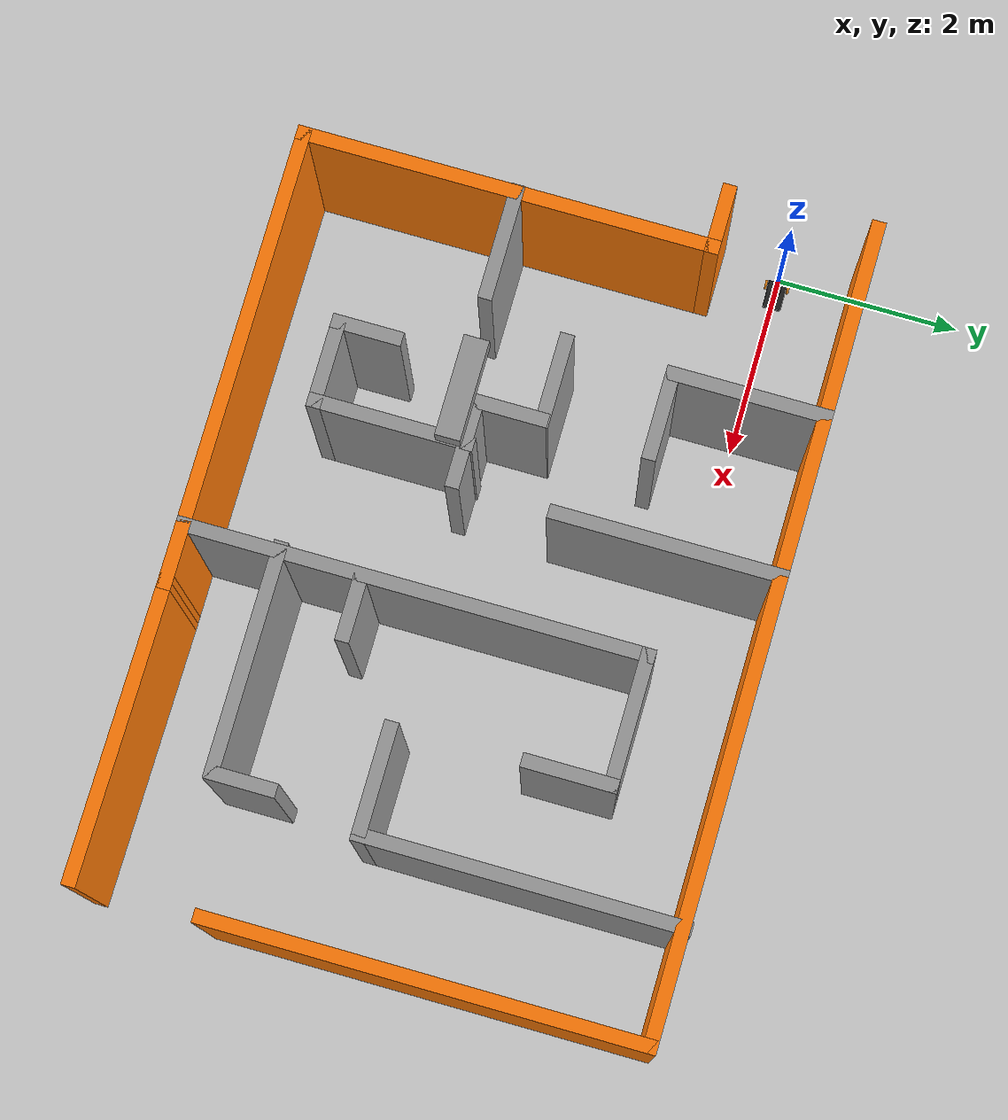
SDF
<sdf version="1.7">
 <world name="default">
  <light name="sun" type="directional">
   <pose>0 0 10 0 -0 0</pose>
   <diffuse>0.8 0.8 0.8 1</diffuse>
   <specular>0.2 0.2 0.2 1</specular>
   <attenuation>
    <range>1000</range>
    <constant>0.9</constant>
    <linear>0.01</linear>
    <quadratic>0.001</quadratic>
   </attenuation>
   <direction>-0.5 0.1 -0.9</direction>
   <spot><inner_angle>0</inner_angle><outer_angle>0</outer_angle><falloff>0</falloff></spot>
  </light>
  <model name="ground_plane">
   <static>1</static>
   <link name="link">
    <collision name="collision">
     <geometry><plane><normal>0 0 1</normal><size>100 100</size></plane></geometry>
     <surface><friction><ode><mu>100</mu><mu2>50</mu2></ode></friction></surface>
    </collision>
    <visual name="visual">
     <cast_shadows>0</cast_shadows>
     <geometry><plane><normal>0 0 1</normal><size>100 100</size></plane></geometry>
     <material>
      <script><uri>file://media/materials/scripts/gazebo.material</uri><name>Gazebo/Grey</name></script>
     </material>
    </visual>
   </link>
  </model>
  <gravity>0 0 -9.8</gravity>
  <magnetic_field>6e-06 2.3e-05 -4.2e-05</magnetic_field>
  <atmosphere type="adiabatic"/>
  <physics type="ode">
   <max_step_size>0.001</max_step_size>
   <real_time_factor>1</real_time_factor>
   <real_time_update_rate>1000</real_time_update_rate>
  </physics>
  <scene><ambient>0.4 0.4 0.4 1</ambient><background>0.7 0.7 0.7 1</background><shadows>1</shadows></scene>
  <spherical_coordinates>
   <surface_model>EARTH_WGS84</surface_model>
   <latitude_deg>0</latitude_deg>
   <longitude_deg>0</longitude_deg>
   <elevation>0</elevation>
   <heading_deg>0</heading_deg>
  </spherical_coordinates>
  <model name="maze_bot">
   <link name="base_link">
    <inertial>
     <pose>-0.013238 0 0.07715 0 -0 0</pose>
     <mass>5.37927</mass>
     <inertia>
      <ixx>0.0217221</ixx>
      <ixy>-9.70605e-17</ixy>
      <ixz>0.00671891</ixz>
      <iyy>0.0415235</iyy>
      <iyz>1.79306e-17</iyz>
      <izz>0.0432734</izz>
     </inertia>
    </inertial>
    <collision name="base_link_collision">
     <geometry>
      <mesh><scale>0.001 0.001 0.001</scale><uri>model://maze_bot/meshes/base_link.stl</uri></mesh>
     </geometry>
     <surface><friction><ode><mu>0.2</mu><mu2>0.2</mu2></ode></friction></surface>
    </collision>
    <collision name="base_link_fixed_joint_lump__caster_1_collision_1">
     <geometry>
      <mesh><scale>0.001 0.001 0.001</scale><uri>model://maze_bot/meshes/caster_1.stl</uri></mesh>
     </geometry>
     <surface><friction><ode><mu>0.01</mu><mu2>0.01</mu2></ode></friction></surface>
    </collision>
    <collision name="base_link_fixed_joint_lump__lidar_1_collision_2">
     <geometry>
      <mesh><scale>0.001 0.001 0.001</scale><uri>model://maze_bot/meshes/lidar_1.stl</uri></mesh>
     </geometry>
     <surface><friction><ode><mu>0.2</mu><mu2>0.2</mu2></ode></friction></surface>
    </collision>
    <collision name="base_link_fixed_joint_lump__camera_1_collision_3">
     <geometry>
      <mesh><scale>0.001 0.001 0.001</scale><uri>model://maze_bot/meshes/camera_1.stl</uri></mesh>
     </geometry>
     <surface><friction><ode><mu>0.2</mu><mu2>0.2</mu2></ode></friction></surface>
    </collision>
    <visual name="base_link_visual">
     <geometry>
      <mesh><scale>0.001 0.001 0.001</scale><uri>model://maze_bot/meshes/base_link.stl</uri></mesh>
     </geometry>
     <material>
      <script><name>Gazebo/Black</name><uri>file://media/materials/scripts/gazebo.material</uri></script>
     </material>
    </visual>
    <visual name="base_link_fixed_joint_lump__caster_1_visual_1">
     <geometry>
      <mesh><scale>0.001 0.001 0.001</scale><uri>model://maze_bot/meshes/caster_1.stl</uri></mesh>
     </geometry>
     <material>
      <script><name>Gazebo/White</name><uri>file://media/materials/scripts/gazebo.material</uri></script>
     </material>
    </visual>
    <visual name="base_link_fixed_joint_lump__lidar_1_visual_2">
     <geometry>
      <mesh><scale>0.001 0.001 0.001</scale><uri>model://maze_bot/meshes/lidar_1.stl</uri></mesh>
     </geometry>
     <material>
      <script><name>Gazebo/DarkGrey</name><uri>file://media/materials/scripts/gazebo.material</uri></script>
     </material>
    </visual>
    <visual name="base_link_fixed_joint_lump__camera_1_visual_3">
     <geometry>
      <mesh><scale>0.001 0.001 0.001</scale><uri>model://maze_bot/meshes/camera_1.stl</uri></mesh>
     </geometry>
     <material>
      <script><name>Gazebo/Blue</name><uri>file://media/materials/scripts/gazebo.material</uri></script>
     </material>
    </visual>
    <sensor name="gazebo_lidar" type="ray">
     <visualize>0</visualize>
     <update_rate>12</update_rate>
     <plugin name="gazebo_lidar" filename="libgazebo_ros_ray_sensor.so">
      <ros><remapping>~/out:=scan</remapping></ros>
      <output_type>sensor_msgs/LaserScan</output_type>
      <frame_name>lidar_1</frame_name>
     </plugin>
     <ray>
      <scan>
       <horizontal>
        <samples>360</samples>
        <resolution>1</resolution>
        <min_angle>-3.14</min_angle>
        <max_angle>3.14</max_angle>
       </horizontal>
       <vertical><samples>1</samples><min_angle>0</min_angle><max_angle>0</max_angle></vertical>
      </scan>
      <range><min>0.12</min><max>3.5</max><resolution>0.015</resolution></range>
      <noise><type>gaussian</type><mean>0</mean><stddev>0.01</stddev></noise>
     </ray>
     <pose>-0.05 0 0.125 0 -0 0</pose>
    </sensor>
    <self_collide>1</self_collide>
    <sensor name="camera1" type="camera">
     <update_rate>30</update_rate>
     <camera name="head">
      <horizontal_fov>1.39626</horizontal_fov>
      <image><width>800</width><height>800</height><format>R8G8B8</format></image>
      <clip><near>0.02</near><far>300</far></clip>
      <noise><type>gaussian</type><mean>0</mean><stddev>0.007</stddev></noise>
     </camera>
     <plugin name="camera_controller" filename="libgazebo_ros_camera.so">
      <alwaysOn>1</alwaysOn>
      <updateRate>0.0</updateRate>
      <cameraName>/camera</cameraName>
      <imageTopicName>image_raw</imageTopicName>
      <cameraInfoTopicName>camera_info</cameraInfoTopicName>
      <frameName>camera_1</frameName>
      <hackBaseline>0.07</hackBaseline>
     </plugin>
     <pose>0.16 0 0.05 0 -0 0</pose>
    </sensor>
   </link>
   <joint name="Revolute 1" type="revolute">
    <pose relative_to="base_link">-0.1 -0.11 0.05 0 -0 0</pose>
    <parent>base_link</parent>
    <child>right_wheel_1</child>
    <axis>
     <xyz>0 1 0</xyz>
     <limit><lower>-1e+16</lower><upper>1e+16</upper></limit>
     <dynamics><spring_reference>0</spring_reference><spring_stiffness>0</spring_stiffness></dynamics>
    </axis>
   </joint>
   <link name="right_wheel_1">
    <pose relative_to="Revolute 1">0 0 0 0 -0 0</pose>
    <inertial>
     <pose>-0 -0.0125 0 0 -0 0</pose>
     <mass>0.175431</mass>
     <inertia>
      <ixx>0.000119</ixx>
      <ixy>0</ixy>
      <ixz>0</ixz>
      <iyy>0.000221</iyy>
      <iyz>0</iyz>
      <izz>0.000119</izz>
     </inertia>
    </inertial>
    <collision name="right_wheel_1_collision">
     <pose>0.1 0.11 -0.05 0 -0 0</pose>
     <geometry>
      <mesh><scale>0.001 0.001 0.001</scale><uri>model://maze_bot/meshes/right_wheel_1.stl</uri></mesh>
     </geometry>
     <surface><friction><ode><mu>15000</mu><mu2>15000</mu2></ode></friction></surface>
    </collision>
    <visual name="right_wheel_1_visual">
     <pose>0.1 0.11 -0.05 0 -0 0</pose>
     <geometry>
      <mesh><scale>0.001 0.001 0.001</scale><uri>model://maze_bot/meshes/right_wheel_1.stl</uri></mesh>
     </geometry>
     <material>
      <script><name>Gazebo/Orange</name><uri>file://media/materials/scripts/gazebo.material</uri></script>
     </material>
    </visual>
    <self_collide>1</self_collide>
   </link>
   <joint name="Revolute 2" type="revolute">
    <pose relative_to="base_link">-0.1 0.11 0.05 0 -0 0</pose>
    <parent>base_link</parent>
    <child>left_wheel_1</child>
    <axis>
     <xyz>0 1 0</xyz>
     <limit><lower>-1e+16</lower><upper>1e+16</upper></limit>
     <dynamics><spring_reference>0</spring_reference><spring_stiffness>0</spring_stiffness></dynamics>
    </axis>
   </joint>
   <link name="left_wheel_1">
    <pose relative_to="Revolute 2">0 0 0 0 -0 0</pose>
    <inertial>
     <pose>-0 0.0125 0 0 -0 0</pose>
     <mass>0.175431</mass>
     <inertia>
      <ixx>0.000119</ixx>
      <ixy>0</ixy>
      <ixz>0</ixz>
      <iyy>0.000221</iyy>
      <iyz>0</iyz>
      <izz>0.000119</izz>
     </inertia>
    </inertial>
    <collision name="left_wheel_1_collision">
     <pose>0.1 -0.11 -0.05 0 -0 0</pose>
     <geometry>
      <mesh><scale>0.001 0.001 0.001</scale><uri>model://maze_bot/meshes/left_wheel_1.stl</uri></mesh>
     </geometry>
     <surface><friction><ode><mu>15000</mu><mu2>15000</mu2></ode></friction></surface>
    </collision>
    <visual name="left_wheel_1_visual">
     <pose>0.1 -0.11 -0.05 0 -0 0</pose>
     <geometry>
      <mesh><scale>0.001 0.001 0.001</scale><uri>model://maze_bot/meshes/left_wheel_1.stl</uri></mesh>
     </geometry>
     <material>
      <script><name>Gazebo/Orange</name><uri>file://media/materials/scripts/gazebo.material</uri></script>
     </material>
    </visual>
    <self_collide>1</self_collide>
   </link>
   <static>0</static>
   <plugin name="gazebo_base_controller" filename="libgazebo_ros_diff_drive.so">
    <odometry_frame>odom</odometry_frame>
    <commandTopic>cmd_vel</commandTopic>
    <publish_odom>1</publish_odom>
    <publish_odom_tf>1</publish_odom_tf>
    <update_rate>15.0</update_rate>
    <left_joint>Revolute 2</left_joint>
    <right_joint>Revolute 1</right_joint>
    <wheel_separation>0.12</wheel_separation>
    <wheel_diameter>0.1</wheel_diameter>
    <max_wheel_acceleration>1.0</max_wheel_acceleration>
    <robotBaseFrame>base_link</robotBaseFrame>
   </plugin>
   <pose>0.185822 0.002722 -1.3e-05 0.00023 -0.000128 0.013183</pose>
  </model>
  <model name="maze_world">
   <pose>4.18057 -2.12778 0 0 -0 0</pose>
   <link name="Wall_12">
    <collision name="Wall_12_Collision">
     <geometry><box><size>8.75 0.15 2.5</size></box></geometry>
     <pose>0 0 1.25 0 -0 0</pose>
    </collision>
    <visual name="Wall_12_Visual">
     <pose>0 0 1.25 0 -0 0</pose>
     <geometry><box><size>8.75 0.15 2.5</size></box></geometry>
     <material>
      <script><uri>file://media/materials/scripts/gazebo.material</uri><name>Gazebo/Grey</name></script>
      <ambient>0.996078 0.47451 0.0196078 1</ambient>
     </material>
     <meta><layer>0</layer></meta>
    </visual>
    <pose>-0 2.96607 0 0 -0 0</pose>
   </link>
   <link name="Wall_13">
    <collision name="Wall_13_Collision">
     <geometry><box><size>4.75 0.15 2.5</size></box></geometry>
     <pose>0 0 1.25 0 -0 0</pose>
    </collision>
    <visual name="Wall_13_Visual">
     <pose>0 0 1.25 0 -0 0</pose>
     <geometry><box><size>4.75 0.15 2.5</size></box></geometry>
     <material>
      <script><uri>file://media/materials/scripts/gazebo.material</uri><name>Gazebo/Grey</name></script>
      <ambient>0.996078 0.47451 0.0196078 1</ambient>
     </material>
     <meta><layer>0</layer></meta>
    </visual>
    <pose>4.3 0.666072 0 0 -0 -1.5708</pose>
   </link>
   <link name="Wall_15">
    <collision name="Wall_15_Collision">
     <geometry><box><size>1.75 0.15 2.5</size></box></geometry>
     <pose>0 0 1.25 0 -0 0</pose>
    </collision>
    <visual name="Wall_15_Visual">
     <pose>0 0 1.25 0 -0 0</pose>
     <geometry><box><size>1.75 0.15 2.5</size></box></geometry>
     <material>
      <script><uri>file://media/materials/scripts/gazebo.material</uri><name>Gazebo/Grey</name></script>
      <ambient>0.180392 0.203922 0.211765 1</ambient>
     </material>
     <meta><layer>0</layer></meta>
    </visual>
    <pose>-2.26203 2.16607 0 0 -0 -1.5708</pose>
   </link>
   <link name="Wall_16">
    <collision name="Wall_16_Collision">
     <geometry><box><size>1 0.15 2.5</size></box></geometry>
     <pose>0 0 1.25 0 -0 0</pose>
    </collision>
    <visual name="Wall_16_Visual">
     <pose>0 0 1.25 0 -0 0</pose>
     <geometry><box><size>1 0.15 2.5</size></box></geometry>
     <material>
      <script><uri>file://media/materials/scripts/gazebo.material</uri><name>Gazebo/Grey</name></script>
      <ambient>0.180392 0.203922 0.211765 1</ambient>
     </material>
     <meta><layer>0</layer></meta>
    </visual>
    <pose>-1.83703 1.36607 0 0 -0 0</pose>
   </link>
   <link name="Wall_18">
    <collision name="Wall_18_Collision">
     <geometry><box><size>1 0.15 2.5</size></box></geometry>
     <pose>0 0 1.25 0 -0 0</pose>
    </collision>
    <visual name="Wall_18_Visual">
     <pose>0 0 1.25 0 -0 0</pose>
     <geometry><box><size>1 0.15 2.5</size></box></geometry>
     <material>
      <script><uri>file://media/materials/scripts/gazebo.material</uri><name>Gazebo/Grey</name></script>
      <ambient>0.180392 0.203922 0.211765 1</ambient>
     </material>
     <meta><layer>0</layer></meta>
    </visual>
    <pose>-1.86745 0.228497 0 0 -0 0</pose>
   </link>
   <link name="Wall_19">
    <collision name="Wall_19_Collision">
     <geometry><box><size>0.824155 0.15 2.5</size></box></geometry>
     <pose>0 0 1.25 0 -0 0</pose>
    </collision>
    <visual name="Wall_19_Visual">
     <pose>0 0 1.25 0 -0 0</pose>
     <geometry><box><size>0.824155 0.15 2.5</size></box></geometry>
     <material>
      <script><uri>file://media/materials/scripts/gazebo.material</uri><name>Gazebo/Grey</name></script>
      <ambient>0.180392 0.203922 0.211765 1</ambient>
     </material>
     <meta><layer>0</layer></meta>
    </visual>
    <pose>-1.44245 -0.123789 0 0 -0 -1.5708</pose>
   </link>
   <link name="Wall_20">
    <collision name="Wall_20_Collision">
     <geometry><box><size>1 0.15 2.5</size></box></geometry>
     <pose>0 0 1.25 0 -0 0</pose>
    </collision>
    <visual name="Wall_20_Visual">
     <pose>0 0 1.25 0 -0 0</pose>
     <geometry><box><size>1 0.15 2.5</size></box></geometry>
     <material>
      <script><uri>file://media/materials/scripts/gazebo.material</uri><name>Gazebo/Grey</name></script>
      <ambient>0.180392 0.203922 0.211765 1</ambient>
     </material>
     <meta><layer>0</layer></meta>
    </visual>
    <pose>-1.01745 -0.460867 0 0 -0 0</pose>
   </link>
   <link name="Wall_22">
    <collision name="Wall_22_Collision">
     <geometry><box><size>2.5 0.15 2.5</size></box></geometry>
     <pose>0 0 1.25 0 -0 0</pose>
    </collision>
    <visual name="Wall_22_Visual">
     <pose>0 0 1.25 0 -0 0</pose>
     <geometry><box><size>2.5 0.15 2.5</size></box></geometry>
     <material>
      <script><uri>file://media/materials/scripts/gazebo.material</uri><name>Gazebo/Grey</name></script>
      <ambient>0.180392 0.203922 0.211765 1</ambient>
     </material>
     <meta><layer>0</layer></meta>
    </visual>
    <pose>-0.558648 1.79107 0 0 -0 -1.5708</pose>
   </link>
   <link name="Wall_24">
    <collision name="Wall_24_Collision">
     <geometry><box><size>5 0.15 2.5</size></box></geometry>
     <pose>0 0 1.25 0 -0 0</pose>
    </collision>
    <visual name="Wall_24_Visual">
     <pose>0 0 1.25 0 -0 0</pose>
     <geometry><box><size>5 0.15 2.5</size></box></geometry>
     <material>
      <script><uri>file://media/materials/scripts/gazebo.material</uri><name>Gazebo/Grey</name></script>
      <ambient>0.180392 0.203922 0.211765 1</ambient>
     </material>
     <meta><layer>0</layer></meta>
    </visual>
    <pose>0.582008 -0.525132 0 0 -0 1.5708</pose>
   </link>
   <link name="Wall_25">
    <collision name="Wall_25_Collision">
     <geometry><box><size>1.5 0.15 2.5</size></box></geometry>
     <pose>0 0 1.25 0 -0 0</pose>
    </collision>
    <visual name="Wall_25_Visual">
     <pose>0 0 1.25 0 -0 0</pose>
     <geometry><box><size>1.5 0.15 2.5</size></box></geometry>
     <material>
      <script><uri>file://media/materials/scripts/gazebo.material</uri><name>Gazebo/Grey</name></script>
      <ambient>0.180392 0.203922 0.211765 1</ambient>
     </material>
     <meta><layer>0</layer></meta>
    </visual>
    <pose>1.25701 1.89987 0 0 -0 0</pose>
   </link>
   <link name="Wall_26">
    <collision name="Wall_26_Collision">
     <geometry><box><size>1 0.15 2.5</size></box></geometry>
     <pose>0 0 1.25 0 -0 0</pose>
    </collision>
    <visual name="Wall_26_Visual">
     <pose>0 0 1.25 0 -0 0</pose>
     <geometry><box><size>1 0.15 2.5</size></box></geometry>
     <material>
      <script><uri>file://media/materials/scripts/gazebo.material</uri><name>Gazebo/Grey</name></script>
      <ambient>0.180392 0.203922 0.211765 1</ambient>
     </material>
     <meta><layer>0</layer></meta>
    </visual>
    <pose>1.93201 1.47487 0 0 -0 -1.5708</pose>
   </link>
   <link name="Wall_29">
    <collision name="Wall_29_Collision">
     <geometry><box><size>3.5 0.15 2.5</size></box></geometry>
     <pose>0 0 1.25 0 -0 0</pose>
    </collision>
    <visual name="Wall_29_Visual">
     <pose>0 0 1.25 0 -0 0</pose>
     <geometry><box><size>3.5 0.15 2.5</size></box></geometry>
     <material>
      <script><uri>file://media/materials/scripts/gazebo.material</uri><name>Gazebo/Grey</name></script>
      <ambient>0.180392 0.203922 0.211765 1</ambient>
     </material>
     <meta><layer>0</layer></meta>
    </visual>
    <pose>3.09145 1.30628 0 0 -0 -1.5708</pose>
   </link>
   <link name="Wall_30">
    <collision name="Wall_30_Collision">
     <geometry><box><size>1.25 0.15 2.5</size></box></geometry>
     <pose>0 0 1.25 0 -0 0</pose>
    </collision>
    <visual name="Wall_30_Visual">
     <pose>0 0 1.25 0 -0 0</pose>
     <geometry><box><size>1.25 0.15 2.5</size></box></geometry>
     <material>
      <script><uri>file://media/materials/scripts/gazebo.material</uri><name>Gazebo/Grey</name></script>
      <ambient>0.180392 0.203922 0.211765 1</ambient>
     </material>
     <meta><layer>0</layer></meta>
    </visual>
    <pose>2.54145 -0.368719 0 0 -0 3.14159</pose>
   </link>
   <link name="Wall_32">
    <collision name="Wall_32_Collision">
     <geometry><box><size>0.75 0.15 2.5</size></box></geometry>
     <pose>0 0 1.25 0 -0 0</pose>
    </collision>
    <visual name="Wall_32_Visual">
     <pose>0 0 1.25 0 -0 0</pose>
     <geometry><box><size>0.75 0.15 2.5</size></box></geometry>
     <material>
      <script><uri>file://media/materials/scripts/gazebo.material</uri><name>Gazebo/Grey</name></script>
      <ambient>0.180392 0.203922 0.211765 1</ambient>
     </material>
     <meta><layer>0</layer></meta>
    </visual>
    <pose>0.912426 -1.07946 0 0 -0 0</pose>
   </link>
   <link name="Wall_34">
    <collision name="Wall_34_Collision">
     <geometry><box><size>1.25 0.15 2.5</size></box></geometry>
     <pose>0 0 1.25 0 -0 0</pose>
    </collision>
    <visual name="Wall_34_Visual">
     <pose>0 0 1.25 0 -0 0</pose>
     <geometry><box><size>1.25 0.15 2.5</size></box></geometry>
     <material>
      <script><uri>file://media/materials/scripts/gazebo.material</uri><name>Gazebo/Grey</name></script>
      <ambient>0.180392 0.203922 0.211765 1</ambient>
     </material>
     <meta><layer>0</layer></meta>
    </visual>
    <pose>-3.11123 -0.684028 0 0 -0 0</pose>
   </link>
   <link name="Wall_36">
    <collision name="Wall_36_Collision">
     <geometry><box><size>1.75 0.15 2.5</size></box></geometry>
     <pose>0 0 1.25 0 -0 0</pose>
    </collision>
    <visual name="Wall_36_Visual">
     <pose>0 0 1.25 0 -0 0</pose>
     <geometry><box><size>1.75 0.15 2.5</size></box></geometry>
     <material>
      <script><uri>file://media/materials/scripts/gazebo.material</uri><name>Gazebo/Grey</name></script>
      <ambient>0.180392 0.203922 0.211765 1</ambient>
     </material>
     <meta><layer>0</layer></meta>
    </visual>
    <pose>-0.999702 -1.24069 0 0 -0 -1.5708</pose>
   </link>
   <link name="Wall_37">
    <collision name="Wall_37_Collision">
     <geometry><box><size>1 0.15 2.5</size></box></geometry>
     <pose>0 0 1.25 0 -0 0</pose>
    </collision>
    <visual name="Wall_37_Visual">
     <pose>0 0 1.25 0 -0 0</pose>
     <geometry><box><size>1 0.15 2.5</size></box></geometry>
     <material>
      <script><uri>file://media/materials/scripts/gazebo.material</uri><name>Gazebo/Grey</name></script>
      <ambient>0.180392 0.203922 0.211765 1</ambient>
     </material>
     <meta><layer>0</layer></meta>
    </visual>
    <pose>-1.4247 -2.04069 0 0 -0 3.14159</pose>
   </link>
   <link name="Wall_38">
    <collision name="Wall_38_Collision">
     <geometry><box><size>0.75 0.15 2.5</size></box></geometry>
     <pose>0 0 1.25 0 -0 0</pose>
    </collision>
    <visual name="Wall_38_Visual">
     <pose>0 0 1.25 0 -0 0</pose>
     <geometry><box><size>0.75 0.15 2.5</size></box></geometry>
     <material>
      <script><uri>file://media/materials/scripts/gazebo.material</uri><name>Gazebo/Grey</name></script>
      <ambient>0.180392 0.203922 0.211765 1</ambient>
     </material>
     <meta><layer>0</layer></meta>
    </visual>
    <pose>-1.8497 -1.74069 0 0 -0 1.5708</pose>
   </link>
   <link name="Wall_40">
    <collision name="Wall_40_Collision">
     <geometry><box><size>2.5 0.15 2.5</size></box></geometry>
     <pose>0 0 1.25 0 -0 0</pose>
    </collision>
    <visual name="Wall_40_Visual">
     <pose>0 0 1.25 0 -0 0</pose>
     <geometry><box><size>2.5 0.15 2.5</size></box></geometry>
     <material>
      <script><uri>file://media/materials/scripts/gazebo.material</uri><name>Gazebo/Grey</name></script>
      <ambient>0.180392 0.203922 0.211765 1</ambient>
     </material>
     <meta><layer>0</layer></meta>
    </visual>
    <pose>1.72659 -1.94635 0 0 -0 0</pose>
   </link>
   <link name="Wall_41">
    <collision name="Wall_41_Collision">
     <geometry><box><size>0.75 0.15 2.5</size></box></geometry>
     <pose>0 0 1.25 0 -0 0</pose>
    </collision>
    <visual name="Wall_41_Visual">
     <pose>0 0 1.25 0 -0 0</pose>
     <geometry><box><size>0.75 0.15 2.5</size></box></geometry>
     <material>
      <script><uri>file://media/materials/scripts/gazebo.material</uri><name>Gazebo/Grey</name></script>
      <ambient>0.180392 0.203922 0.211765 1</ambient>
     </material>
     <meta><layer>0</layer></meta>
    </visual>
    <pose>2.90159 -1.64635 0 0 -0 1.5708</pose>
   </link>
   <link name="Wall_5">
    <collision name="Wall_5_Collision">
     <geometry><box><size>3.25 0.15 2.5</size></box></geometry>
     <pose>0 0 1.25 0 -0 0</pose>
    </collision>
    <visual name="Wall_5_Visual">
     <pose>0 0 1.25 0 -0 0</pose>
     <geometry><box><size>3.25 0.15 2.5</size></box></geometry>
     <material>
      <script><uri>file://media/materials/scripts/gazebo.material</uri><name>Gazebo/Grey</name></script>
      <ambient>0.996078 0.47451 0.0196078 1</ambient>
     </material>
     <meta><layer>0</layer></meta>
    </visual>
    <pose>2.74453 -2.96534 0 0 -0 -0.009812</pose>
   </link>
   <link name="Wall_7">
    <collision name="Wall_7_Collision">
     <geometry><box><size>5 0.15 2.5</size></box></geometry>
     <pose>0 0 1.25 0 -0 0</pose>
    </collision>
    <visual name="Wall_7_Visual">
     <pose>0 0 1.25 0 -0 0</pose>
     <geometry><box><size>5 0.15 2.5</size></box></geometry>
     <material>
      <script><uri>file://media/materials/scripts/gazebo.material</uri><name>Gazebo/Grey</name></script>
      <ambient>0.996078 0.47451 0.0196078 1</ambient>
     </material>
     <meta><layer>0</layer></meta>
    </visual>
    <pose>-1.23047 -2.95013 0 0 -0 3.14159</pose>
   </link>
   <link name="Wall_8">
    <collision name="Wall_8_Collision">
     <geometry><box><size>4.5 0.15 2.5</size></box></geometry>
     <pose>0 0 1.25 0 -0 0</pose>
    </collision>
    <visual name="Wall_8_Visual">
     <pose>0 0 1.25 0 -0 0</pose>
     <geometry><box><size>4.5 0.15 2.5</size></box></geometry>
     <material>
      <script><uri>file://media/materials/scripts/gazebo.material</uri><name>Gazebo/Grey</name></script>
      <ambient>0.996078 0.47451 0.0196078 1</ambient>
     </material>
     <meta><layer>0</layer></meta>
    </visual>
    <pose>-3.65547 -0.775132 0 0 -0 1.5708</pose>
   </link>
   <link name="Wall_9">
    <collision name="Wall_9_Collision">
     <geometry><box><size>0.75 0.15 2.5</size></box></geometry>
     <pose>0 0 1.25 0 -0 0</pose>
    </collision>
    <visual name="Wall_9_Visual">
     <pose>0 0 1.25 0 -0 0</pose>
     <geometry><box><size>0.75 0.15 2.5</size></box></geometry>
     <material>
      <script><uri>file://media/materials/scripts/gazebo.material</uri><name>Gazebo/Grey</name></script>
      <ambient>0.996078 0.47451 0.0196078 1</ambient>
     </material>
     <meta><layer>0</layer></meta>
    </visual>
    <pose>-3.95547 1.39987 0 0 -0 3.14159</pose>
   </link>
   <static>1</static>
  </model>
  <model name="mazebot_world_camera">
   <link name="link_0">
    <inertial>
     <mass>1</mass>
     <inertia>
      <ixx>0.166667</ixx>
      <ixy>0</ixy>
      <ixz>0</ixz>
      <iyy>0.166667</iyy>
      <iyz>0</iyz>
      <izz>0.166667</izz>
     </inertia>
    </inertial>
    <pose>4e-06 4e-06 -2e-05 0 -0 0</pose>
    <visual name="visual">
     <geometry><box><size>0.8 0.2 0.2</size></box></geometry>
     <material>
      <lighting>1</lighting>
      <script><uri>file://media/materials/scripts/gazebo.material</uri><name>Gazebo/Grey</name></script>
      <shader type="pixel"><normal_map>__default__</normal_map></shader>
      <ambient>0.3 0.3 0.3 1</ambient>
      <diffuse>0.7 0.7 0.7 1</diffuse>
      <specular>0.01 0.01 0.01 1</specular>
      <emissive>0 0 0 1</emissive>
     </material>
    </visual>
    <collision name="collision">
     <geometry><box><size>0.8 0.2 0.2</size></box></geometry>
     <surface>
      <friction>
       <ode><mu>1</mu><mu2>1</mu2><fdir1>0 0 0</fdir1><slip1>0</slip1><slip2>0</slip2></ode>
       <torsional>
        <coefficient>1</coefficient>
        <patch_radius>0</patch_radius>
        <surface_radius>0</surface_radius>
        <use_patch_radius>1</use_patch_radius>
        <ode><slip>0</slip></ode>
       </torsional>
      </friction>
      <bounce><restitution_coefficient>0</restitution_coefficient><threshold>1e+06</threshold></bounce>
      <contact>
       <collide_without_contact>0</collide_without_contact>
       <collide_without_contact_bitmask>1</collide_without_contact_bitmask>
       <collide_bitmask>1</collide_bitmask>
       <ode>
        <soft_cfm>0</soft_cfm>
        <soft_erp>0.2</soft_erp>
        <kp>1e+13</kp>
        <kd>1</kd>
        <max_vel>0.01</max_vel>
        <min_depth>0</min_depth>
       </ode>
       <bullet>
        <split_impulse>1</split_impulse>
        <split_impulse_penetration_threshold>-0.01</split_impulse_penetration_threshold>
        <soft_cfm>0</soft_cfm>
        <soft_erp>0.2</soft_erp>
        <kp>1e+13</kp>
        <kd>1</kd>
       </bullet>
      </contact>
     </surface>
    </collision>
    <sensor type="camera" name="upper_camera">
     <pose>0 0 0 0 1.57 0</pose>
     <update_rate>30.0</update_rate>
     <visualize>true</visualize>
     <camera name="head">
      <horizontal_fov>1.3962634</horizontal_fov>
      <image><width>800</width><height>800</height><format>R8G8B8</format></image>
      <clip><near>0.02</near><far>300</far></clip>
      <noise><type>gaussian</type><mean>0.0</mean><stddev>0.007</stddev></noise>
     </camera>
     <plugin name="camera_controller" filename="libgazebo_ros_camera.so">
      <alwaysOn>true</alwaysOn>
      <updateRate>0.0</updateRate>
      <cameraName>/camera</cameraName>
      <imageTopicName>image_raw</imageTopicName>
      <cameraInfoTopicName>camera_info</cameraInfoTopicName>
      <frameName>camera_1</frameName>
      <hackBaseline>0.07</hackBaseline>
     </plugin>
    </sensor>
   </link>
   <static>1</static>
   <pose>4.48502 -2.01182 10.8124 0 -0 0</pose>
  </model>
 </world>
</sdf>
